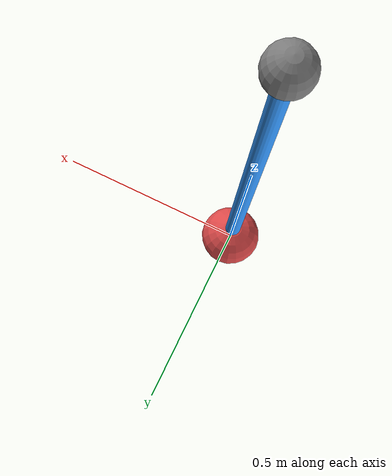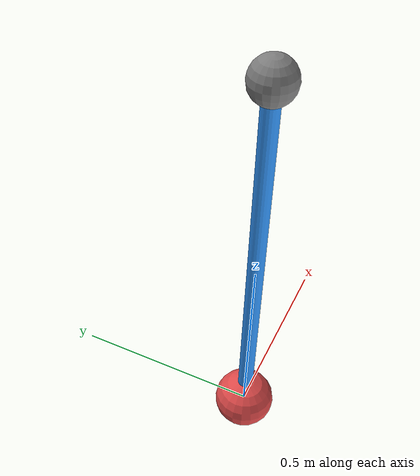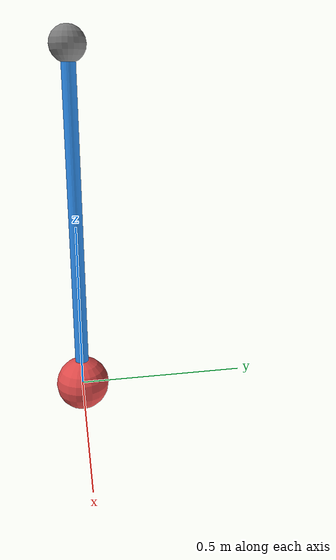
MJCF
<mujoco model="pendulum">
  <option gravity="0 0 -9.81" integrator="RK4" timestep="0.01"/>

  <worldbody>
    <light pos="0 0 3" dir="0 0 -1"/>
    <camera name="fixed" pos="0 -3 1" xyaxes="1 0 0 0 0 1"/>

    <body name="pivot" pos="0 0 1">
      <joint name="hinge" type="hinge" axis="0 1 0" damping="0" frictionloss="0"/>
      <geom type="sphere" size="0.05" rgba="0.5 0.5 0.5 1"/>
      <body name="bob" pos="0 0 -1">
        <geom type="capsule" fromto="0 0 1 0 0 0" size="0.02" rgba="0.2 0.6 1 1"/>
        <geom type="sphere" size="0.08" pos="0 0 0" rgba="0.9 0.3 0.3 1"/>
      </body>
    </body>
  </worldbody>
</mujoco>
